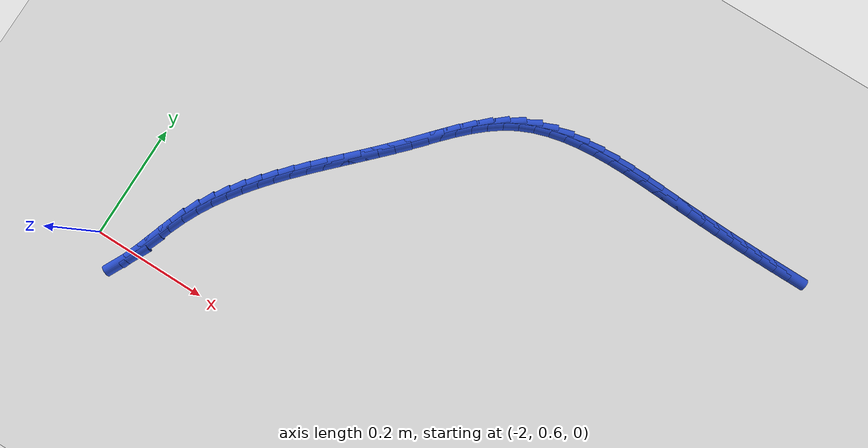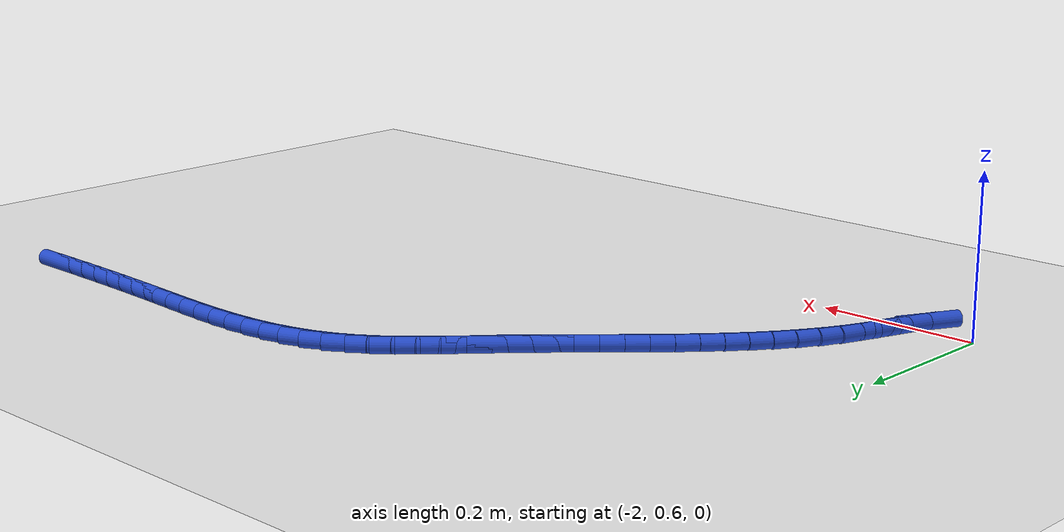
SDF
<sdf version="1.6">
 <world name="default">
  <model name="ground_plane">
   <static>1</static>
   <link name="link">
    <collision name="collision">
     <geometry><plane><normal>0 0 1</normal><size>100 100</size></plane></geometry>
     <surface><friction><ode><mu>100</mu><mu2>50</mu2></ode></friction></surface>
    </collision>
    <visual name="visual">
     <cast_shadows>0</cast_shadows>
     <geometry><plane><normal>0 0 1</normal><size>100 100</size></plane></geometry>
     <material>
      <script><uri>file://media/materials/scripts/gazebo.material</uri><name>Gazebo/WhiteGlow</name></script>
     </material>
    </visual>
   </link>
  </model>
  <model name="line">
   <link name="link_60">
    <pose>-1.0033315848649351 1.1450677499494981 0.01 0 1.57 -0.006255489113667665</pose>
    <collision name="collision">
     <geometry><cylinder><radius>0.01</radius><length>0.08</length></cylinder></geometry>
    </collision>
    <visual name="visual">
     <material>
      <script><name>Gazebo/Blue</name><uri>file://media/materials/scripts/gazebo.material</uri></script>
     </material>
     <geometry><cylinder><radius>0.01</radius><length>0.08</length></cylinder></geometry>
    </visual>
   </link>
   <link name="link_61">
    <pose>-1.031918464814238 1.1452465771983924 0.01 0 1.57 -0.012063305055428054</pose>
    <collision name="collision">
     <geometry><cylinder><radius>0.01</radius><length>0.08</length></cylinder></geometry>
    </collision>
    <visual name="visual">
     <material>
      <script><name>Gazebo/Blue</name><uri>file://media/materials/scripts/gazebo.material</uri></script>
     </material>
     <geometry><cylinder><radius>0.01</radius><length>0.08</length></cylinder></geometry>
    </visual>
   </link>
   <link name="link_62">
    <pose>-1.0599910377494666 1.145585241637419 0.01 0 1.57 -0.018777655697686864</pose>
    <collision name="collision">
     <geometry><cylinder><radius>0.01</radius><length>0.08</length></cylinder></geometry>
    </collision>
    <visual name="visual">
     <material>
      <script><name>Gazebo/Blue</name><uri>file://media/materials/scripts/gazebo.material</uri></script>
     </material>
     <geometry><cylinder><radius>0.01</radius><length>0.08</length></cylinder></geometry>
    </visual>
   </link>
   <link name="link_63">
    <pose>-1.0876753931300798 1.1461051500390338 0.01 0 1.57 -0.025463691716911725</pose>
    <collision name="collision">
     <geometry><cylinder><radius>0.01</radius><length>0.08</length></cylinder></geometry>
    </collision>
    <visual name="visual">
     <material>
      <script><name>Gazebo/Blue</name><uri>file://media/materials/scripts/gazebo.material</uri></script>
     </material>
     <geometry><cylinder><radius>0.01</radius><length>0.08</length></cylinder></geometry>
    </visual>
   </link>
   <link name="link_64">
    <pose>-1.1151371357905417 1.1468045785644083 0.01 0 1.57 -0.03199904647307054</pose>
    <collision name="collision">
     <geometry><cylinder><radius>0.01</radius><length>0.08</length></cylinder></geometry>
    </collision>
    <visual name="visual">
     <material>
      <script><name>Gazebo/Blue</name><uri>file://media/materials/scripts/gazebo.material</uri></script>
     </material>
     <geometry><cylinder><radius>0.01</radius><length>0.08</length></cylinder></geometry>
    </visual>
   </link>
   <link name="link_65">
    <pose>-1.1425418705653185 1.1476818033747134 0.01 0 1.57 -0.03826447295040134</pose>
    <collision name="collision">
     <geometry><cylinder><radius>0.01</radius><length>0.08</length></cylinder></geometry>
    </collision>
    <visual name="visual">
     <material>
      <script><name>Gazebo/Blue</name><uri>file://media/materials/scripts/gazebo.material</uri></script>
     </material>
     <geometry><cylinder><radius>0.01</radius><length>0.08</length></cylinder></geometry>
    </visual>
   </link>
   <link name="link_66">
    <pose>-1.1700552022888753 1.1487351006311202 0.01 0 1.57 -0.04415102445250128</pose>
    <collision name="collision">
     <geometry><cylinder><radius>0.01</radius><length>0.08</length></cylinder></geometry>
    </collision>
    <visual name="visual">
     <material>
      <script><name>Gazebo/Blue</name><uri>file://media/materials/scripts/gazebo.material</uri></script>
     </material>
     <geometry><cylinder><radius>0.01</radius><length>0.08</length></cylinder></geometry>
    </visual>
   </link>
   <link name="link_67">
    <pose>-1.1978427357956773 1.1499627464948001 0.01 0 1.57 -0.04946991345475288</pose>
    <collision name="collision">
     <geometry><cylinder><radius>0.01</radius><length>0.08</length></cylinder></geometry>
    </collision>
    <visual name="visual">
     <material>
      <script><name>Gazebo/Blue</name><uri>file://media/materials/scripts/gazebo.material</uri></script>
     </material>
     <geometry><cylinder><radius>0.01</radius><length>0.08</length></cylinder></geometry>
    </visual>
   </link>
   <link name="link_68">
    <pose>-1.2260663849839828 1.1513601080716547 0.01 0 1.57 -0.05043283540864319</pose>
    <collision name="collision">
     <geometry><cylinder><radius>0.01</radius><length>0.08</length></cylinder></geometry>
    </collision>
    <visual name="visual">
     <material>
      <script><name>Gazebo/Blue</name><uri>file://media/materials/scripts/gazebo.material</uri></script>
     </material>
     <geometry><cylinder><radius>0.01</radius><length>0.08</length></cylinder></geometry>
    </visual>
   </link>
   <link name="link_69">
    <pose>-1.2547421320679724 1.1528075346751712 0.01 0 1.57 -0.04236440016118949</pose>
    <collision name="collision">
     <geometry><cylinder><radius>0.01</radius><length>0.08</length></cylinder></geometry>
    </collision>
    <visual name="visual">
     <material>
      <script><name>Gazebo/Blue</name><uri>file://media/materials/scripts/gazebo.material</uri></script>
     </material>
     <geometry><cylinder><radius>0.01</radius><length>0.08</length></cylinder></geometry>
    </visual>
   </link>
   <link name="link_70">
    <pose>-1.2836949612115611 1.1540348382339194 0.01 0 1.57 -0.02502122624400573</pose>
    <collision name="collision">
     <geometry><cylinder><radius>0.01</radius><length>0.08</length></cylinder></geometry>
    </collision>
    <visual name="visual">
     <material>
      <script><name>Gazebo/Blue</name><uri>file://media/materials/scripts/gazebo.material</uri></script>
     </material>
     <geometry><cylinder><radius>0.01</radius><length>0.08</length></cylinder></geometry>
    </visual>
   </link>
   <link name="link_71">
    <pose>-1.3127369472310673 1.154761656020628 0.01 0 1.57 0.0018667810323370303</pose>
    <collision name="collision">
     <geometry><cylinder><radius>0.01</radius><length>0.08</length></cylinder></geometry>
    </collision>
    <visual name="visual">
     <material>
      <script><name>Gazebo/Blue</name><uri>file://media/materials/scripts/gazebo.material</uri></script>
     </material>
     <geometry><cylinder><radius>0.01</radius><length>0.08</length></cylinder></geometry>
    </visual>
   </link>
   <link name="link_72">
    <pose>-1.3416801649428103 1.1547076253080255 0.01 0 1.57 0.0388979278173846</pose>
    <collision name="collision">
     <geometry><cylinder><radius>0.01</radius><length>0.08</length></cylinder></geometry>
    </collision>
    <visual name="visual">
     <material>
      <script><name>Gazebo/Blue</name><uri>file://media/materials/scripts/gazebo.material</uri></script>
     </material>
     <geometry><cylinder><radius>0.01</radius><length>0.08</length></cylinder></geometry>
    </visual>
   </link>
   <link name="link_73">
    <pose>-1.37033668916311 1.1535923833688408 0.01 0 1.57 0.08695722552844928</pose>
    <collision name="collision">
     <geometry><cylinder><radius>0.01</radius><length>0.08</length></cylinder></geometry>
    </collision>
    <visual name="visual">
     <material>
      <script><name>Gazebo/Blue</name><uri>file://media/materials/scripts/gazebo.material</uri></script>
     </material>
     <geometry><cylinder><radius>0.01</radius><length>0.08</length></cylinder></geometry>
    </visual>
   </link>
   <link name="link_74">
    <pose>-1.398518594708286 1.1511355674758035 0.01 0 1.57 0.14714271772935733</pose>
    <collision name="collision">
     <geometry><cylinder><radius>0.01</radius><length>0.08</length></cylinder></geometry>
    </collision>
    <visual name="visual">
     <material>
      <script><name>Gazebo/Blue</name><uri>file://media/materials/scripts/gazebo.material</uri></script>
     </material>
     <geometry><cylinder><radius>0.01</radius><length>0.08</length></cylinder></geometry>
    </visual>
   </link>
   <link name="link_75">
    <pose>-1.4260379563946581 1.1470568149016411 0.01 0 1.57 0.22062020295751172</pose>
    <collision name="collision">
     <geometry><cylinder><radius>0.01</radius><length>0.08</length></cylinder></geometry>
    </collision>
    <visual name="visual">
     <material>
      <script><name>Gazebo/Blue</name><uri>file://media/materials/scripts/gazebo.material</uri></script>
     </material>
     <geometry><cylinder><radius>0.01</radius><length>0.08</length></cylinder></geometry>
    </visual>
   </link>
   <link name="link_76">
    <pose>-1.4527068490385449 1.141075762919083 0.01 0 1.57 0.3083558672227686</pose>
    <collision name="collision">
     <geometry><cylinder><radius>0.01</radius><length>0.08</length></cylinder></geometry>
    </collision>
    <visual name="visual">
     <material>
      <script><name>Gazebo/Blue</name><uri>file://media/materials/scripts/gazebo.material</uri></script>
     </material>
     <geometry><cylinder><radius>0.01</radius><length>0.08</length></cylinder></geometry>
    </visual>
   </link>
   <link name="link_77">
    <pose>-1.4783373474562664 1.1329120488008582 0.01 0 1.57 0.4106863981370692</pose>
    <collision name="collision">
     <geometry><cylinder><radius>0.01</radius><length>0.08</length></cylinder></geometry>
    </collision>
    <visual name="visual">
     <material>
      <script><name>Gazebo/Blue</name><uri>file://media/materials/scripts/gazebo.material</uri></script>
     </material>
     <geometry><cylinder><radius>0.01</radius><length>0.08</length></cylinder></geometry>
    </visual>
   </link>
   <link name="link_78">
    <pose>-1.5027415264641426 1.1222853098196948 0.01 0 1.57 0.5253655567180938</pose>
    <collision name="collision">
     <geometry><cylinder><radius>0.01</radius><length>0.08</length></cylinder></geometry>
    </collision>
    <visual name="visual">
     <material>
      <script><name>Gazebo/Blue</name><uri>file://media/materials/scripts/gazebo.material</uri></script>
     </material>
     <geometry><cylinder><radius>0.01</radius><length>0.08</length></cylinder></geometry>
    </visual>
   </link>
   <link name="link_79">
    <pose>-1.5257506155456224 1.1089467479432806 0.01 0 1.57 0.631430677718393</pose>
    <collision name="collision">
     <geometry><cylinder><radius>0.01</radius><length>0.08</length></cylinder></geometry>
    </collision>
    <visual name="visual">
     <material>
      <script><name>Gazebo/Blue</name><uri>file://media/materials/scripts/gazebo.material</uri></script>
     </material>
     <geometry><cylinder><radius>0.01</radius><length>0.08</length></cylinder></geometry>
    </visual>
   </link>
   <link name="link_80">
    <pose>-1.5474548016884604 1.0930742974116474 0.01 0 1.57 0.714171885106638</pose>
    <collision name="collision">
     <geometry><cylinder><radius>0.01</radius><length>0.08</length></cylinder></geometry>
    </collision>
    <visual name="visual">
     <material>
      <script><name>Gazebo/Blue</name><uri>file://media/materials/scripts/gazebo.material</uri></script>
     </material>
     <geometry><cylinder><radius>0.01</radius><length>0.08</length></cylinder></geometry>
    </visual>
   </link>
   <link name="link_81">
    <pose>-1.5681303585211297 1.07515254191011 0.01 0 1.57 0.7740421228602928</pose>
    <collision name="collision">
     <geometry><cylinder><radius>0.01</radius><length>0.08</length></cylinder></geometry>
    </collision>
    <visual name="visual">
     <material>
      <script><name>Gazebo/Blue</name><uri>file://media/materials/scripts/gazebo.material</uri></script>
     </material>
     <geometry><cylinder><radius>0.01</radius><length>0.08</length></cylinder></geometry>
    </visual>
   </link>
   <link name="link_82">
    <pose>-1.5880576394396537 1.0556727881130783 0.01 0 1.57 0.8125647109904394</pose>
    <collision name="collision">
     <geometry><cylinder><radius>0.01</radius><length>0.08</length></cylinder></geometry>
    </collision>
    <visual name="visual">
     <material>
      <script><name>Gazebo/Blue</name><uri>file://media/materials/scripts/gazebo.material</uri></script>
     </material>
     <geometry><cylinder><radius>0.01</radius><length>0.08</length></cylinder></geometry>
    </visual>
   </link>
   <link name="link_83">
    <pose>-1.6075169978400543 1.0351263426949595 0.01 0 1.57 0.8311665084110389</pose>
    <collision name="collision">
     <geometry><cylinder><radius>0.01</radius><length>0.08</length></cylinder></geometry>
    </collision>
    <visual name="visual">
     <material>
      <script><name>Gazebo/Blue</name><uri>file://media/materials/scripts/gazebo.material</uri></script>
     </material>
     <geometry><cylinder><radius>0.01</radius><length>0.08</length></cylinder></geometry>
    </visual>
   </link>
   <link name="link_84">
    <pose>-1.6267887871183548 1.0140045123301644 0.01 0 1.57 0.8307531167085646</pose>
    <collision name="collision">
     <geometry><cylinder><radius>0.01</radius><length>0.08</length></cylinder></geometry>
    </collision>
    <visual name="visual">
     <material>
      <script><name>Gazebo/Blue</name><uri>file://media/materials/scripts/gazebo.material</uri></script>
     </material>
     <geometry><cylinder><radius>0.01</radius><length>0.08</length></cylinder></geometry>
    </visual>
   </link>
   <link name="link_85">
    <pose>-1.646153360670578 0.9927986036931011 0.01 0 1.57 0.8148485012602998</pose>
    <collision name="collision">
     <geometry><cylinder><radius>0.01</radius><length>0.08</length></cylinder></geometry>
    </collision>
    <visual name="visual">
     <material>
      <script><name>Gazebo/Blue</name><uri>file://media/materials/scripts/gazebo.material</uri></script>
     </material>
     <geometry><cylinder><radius>0.01</radius><length>0.08</length></cylinder></geometry>
    </visual>
   </link>
   <link name="link_86">
    <pose>-1.6658357164576632 0.9719214100141447 0.01 0 1.57 0.7998124935140541</pose>
    <collision name="collision">
     <geometry><cylinder><radius>0.01</radius><length>0.08</length></cylinder></geometry>
    </collision>
    <visual name="visual">
     <material>
      <script><name>Gazebo/Blue</name><uri>file://media/materials/scripts/gazebo.material</uri></script>
     </material>
     <geometry><cylinder><radius>0.01</radius><length>0.08</length></cylinder></geometry>
    </visual>
   </link>
   <link name="link_87">
    <pose>-1.6857825871757295 0.9513910466702211 0.01 0 1.57 0.7908067574767592</pose>
    <collision name="collision">
     <geometry><cylinder><radius>0.01</radius><length>0.08</length></cylinder></geometry>
    </collision>
    <visual name="visual">
     <material>
      <script><name>Gazebo/Blue</name><uri>file://media/materials/scripts/gazebo.material</uri></script>
     </material>
     <geometry><cylinder><radius>0.01</radius><length>0.08</length></cylinder></geometry>
    </visual>
   </link>
   <link name="link_88">
    <pose>-1.7058534585161313 0.9311018821502511 0.01 0 1.57 0.7878681607909739</pose>
    <collision name="collision">
     <geometry><cylinder><radius>0.01</radius><length>0.08</length></cylinder></geometry>
    </collision>
    <visual name="visual">
     <material>
      <script><name>Gazebo/Blue</name><uri>file://media/materials/scripts/gazebo.material</uri></script>
     </material>
     <geometry><cylinder><radius>0.01</radius><length>0.08</length></cylinder></geometry>
    </visual>
   </link>
   <link name="link_89">
    <pose>-1.7259077854780778 0.9109482414109161 0.01 0 1.57 0.7910589872616692</pose>
    <collision name="collision">
     <geometry><cylinder><radius>0.01</radius><length>0.08</length></cylinder></geometry>
    </collision>
    <visual name="visual">
     <material>
      <script><name>Gazebo/Blue</name><uri>file://media/materials/scripts/gazebo.material</uri></script>
     </material>
     <geometry><cylinder><radius>0.01</radius><length>0.08</length></cylinder></geometry>
    </visual>
   </link>
   <link name="link_90">
    <pose>-1.7458050230607751 0.8908244494088965 0.01 0 1.57 0.8004730726590206</pose>
    <collision name="collision">
     <geometry><cylinder><radius>0.01</radius><length>0.08</length></cylinder></geometry>
    </collision>
    <visual name="visual">
     <material>
      <script><name>Gazebo/Blue</name><uri>file://media/materials/scripts/gazebo.material</uri></script>
     </material>
     <geometry><cylinder><radius>0.01</radius><length>0.08</length></cylinder></geometry>
    </visual>
   </link>
   <link name="link_91">
    <pose>-1.765404626263433 0.8706248311008731 0.01 0 1.57 0.8162335405163246</pose>
    <collision name="collision">
     <geometry><cylinder><radius>0.01</radius><length>0.08</length></cylinder></geometry>
    </collision>
    <visual name="visual">
     <material>
      <script><name>Gazebo/Blue</name><uri>file://media/materials/scripts/gazebo.material</uri></script>
     </material>
     <geometry><cylinder><radius>0.01</radius><length>0.08</length></cylinder></geometry>
    </visual>
   </link>
   <link name="link_92">
    <pose>-1.7845660500852585 0.8502437114435276 0.01 0 1.57 0.8384831141575659</pose>
    <collision name="collision">
     <geometry><cylinder><radius>0.01</radius><length>0.08</length></cylinder></geometry>
    </collision>
    <visual name="visual">
     <material>
      <script><name>Gazebo/Blue</name><uri>file://media/materials/scripts/gazebo.material</uri></script>
     </material>
     <geometry><cylinder><radius>0.01</radius><length>0.08</length></cylinder></geometry>
    </visual>
   </link>
   <link name="link_93">
    <pose>-1.8031487495254608 0.8295754153935412 0.01 0 1.57 0.8673657257531802</pose>
    <collision name="collision">
     <geometry><cylinder><radius>0.01</radius><length>0.08</length></cylinder></geometry>
    </collision>
    <visual name="visual">
     <material>
      <script><name>Gazebo/Blue</name><uri>file://media/materials/scripts/gazebo.material</uri></script>
     </material>
     <geometry><cylinder><radius>0.01</radius><length>0.08</length></cylinder></geometry>
    </visual>
   </link>
   <link name="link_94">
    <pose>-1.821012179583247 0.8085142679075943 0.01 0 1.57 0.9029979828976243</pose>
    <collision name="collision">
     <geometry><cylinder><radius>0.01</radius><length>0.08</length></cylinder></geometry>
    </collision>
    <visual name="visual">
     <material>
      <script><name>Gazebo/Blue</name><uri>file://media/materials/scripts/gazebo.material</uri></script>
     </material>
     <geometry><cylinder><radius>0.01</radius><length>0.08</length></cylinder></geometry>
    </visual>
   </link>
   <link name="link_95">
    <pose>-1.8380157952578262 0.7869545939423687 0.01 0 1.57 0.9454295222164931</pose>
    <collision name="collision">
     <geometry><cylinder><radius>0.01</radius><length>0.08</length></cylinder></geometry>
    </collision>
    <visual name="visual">
     <material>
      <script><name>Gazebo/Blue</name><uri>file://media/materials/scripts/gazebo.material</uri></script>
     </material>
     <geometry><cylinder><radius>0.01</radius><length>0.08</length></cylinder></geometry>
    </visual>
   </link>
   <link name="link_96">
    <pose>-1.8540190515484056 0.764790718454545 0.01 0 1.57 0.9945928305803479</pose>
    <collision name="collision">
     <geometry><cylinder><radius>0.01</radius><length>0.08</length></cylinder></geometry>
    </collision>
    <visual name="visual">
     <material>
      <script><name>Gazebo/Blue</name><uri>file://media/materials/scripts/gazebo.material</uri></script>
     </material>
     <geometry><cylinder><radius>0.01</radius><length>0.08</length></cylinder></geometry>
    </visual>
   </link>
   <link name="link_97">
    <pose>-1.8688814034541938 0.7419169664008043 0.01 0 1.57 1.050246149130082</pose>
    <collision name="collision">
     <geometry><cylinder><radius>0.01</radius><length>0.08</length></cylinder></geometry>
    </collision>
    <visual name="visual">
     <material>
      <script><name>Gazebo/Blue</name><uri>file://media/materials/scripts/gazebo.material</uri></script>
     </material>
     <geometry><cylinder><radius>0.01</radius><length>0.08</length></cylinder></geometry>
    </visual>
   </link>
   <link name="link_98">
    <pose>-1.8824623059743992 0.7182276627378277 0.01 0 1.57 1.1119175672216344</pose>
    <collision name="collision">
     <geometry><cylinder><radius>0.01</radius><length>0.08</length></cylinder></geometry>
    </collision>
    <visual name="visual">
     <material>
      <script><name>Gazebo/Blue</name><uri>file://media/materials/scripts/gazebo.material</uri></script>
     </material>
     <geometry><cylinder><radius>0.01</radius><length>0.08</length></cylinder></geometry>
    </visual>
   </link>
   <link name="link_99">
    <pose>-1.8946212141082297 0.693617132422296 0.01 0 1.57 1.1785381793979686</pose>
    <collision name="collision">
     <geometry><cylinder><radius>0.01</radius><length>0.08</length></cylinder></geometry>
    </collision>
    <visual name="visual">
     <material>
      <script><name>Gazebo/Blue</name><uri>file://media/materials/scripts/gazebo.material</uri></script>
     </material>
     <geometry><cylinder><radius>0.01</radius><length>0.08</length></cylinder></geometry>
    </visual>
   </link>
   <link name="link_100">
    <pose>-1.9052252043322073 0.6679848739587265 0.01 0 1.57 1.2296162232330952</pose>
    <collision name="collision">
     <geometry><cylinder><radius>0.01</radius><length>0.08</length></cylinder></geometry>
    </collision>
    <visual name="visual">
     <material>
      <script><name>Gazebo/Blue</name><uri>file://media/materials/scripts/gazebo.material</uri></script>
     </material>
     <geometry><cylinder><radius>0.01</radius><length>0.08</length></cylinder></geometry>
    </visual>
   </link>
   <link name="link_101">
    <pose>-1.9146114807787846 0.6415495139965384 0.01 0 1.57 1.2354689698108032</pose>
    <collision name="collision">
     <geometry><cylinder><radius>0.01</radius><length>0.08</length></cylinder></geometry>
    </collision>
    <visual name="visual">
     <material>
      <script><name>Gazebo/Blue</name><uri>file://media/materials/scripts/gazebo.material</uri></script>
     </material>
     <geometry><cylinder><radius>0.01</radius><length>0.08</length></cylinder></geometry>
    </visual>
   </link>
   <link name="link_102">
    <pose>-1.9238534253532702 0.6150294052574382 0.01 0 1.57 1.1936958675554552</pose>
    <collision name="collision">
     <geometry><cylinder><radius>0.01</radius><length>0.08</length></cylinder></geometry>
    </collision>
    <visual name="visual">
     <material>
      <script><name>Gazebo/Blue</name><uri>file://media/materials/scripts/gazebo.material</uri></script>
     </material>
     <geometry><cylinder><radius>0.01</radius><length>0.08</length></cylinder></geometry>
    </visual>
   </link>
   <link name="link_103">
    <pose>-1.9340886294514976 0.5891864866153999 0.01 0 1.57 1.1017817453120544</pose>
    <collision name="collision">
     <geometry><cylinder><radius>0.01</radius><length>0.08</length></cylinder></geometry>
    </collision>
    <visual name="visual">
     <material>
      <script><name>Gazebo/Blue</name><uri>file://media/materials/scripts/gazebo.material</uri></script>
     </material>
     <geometry><cylinder><radius>0.01</radius><length>0.08</length></cylinder></geometry>
    </visual>
   </link>
  </model>
 </world>
</sdf>
